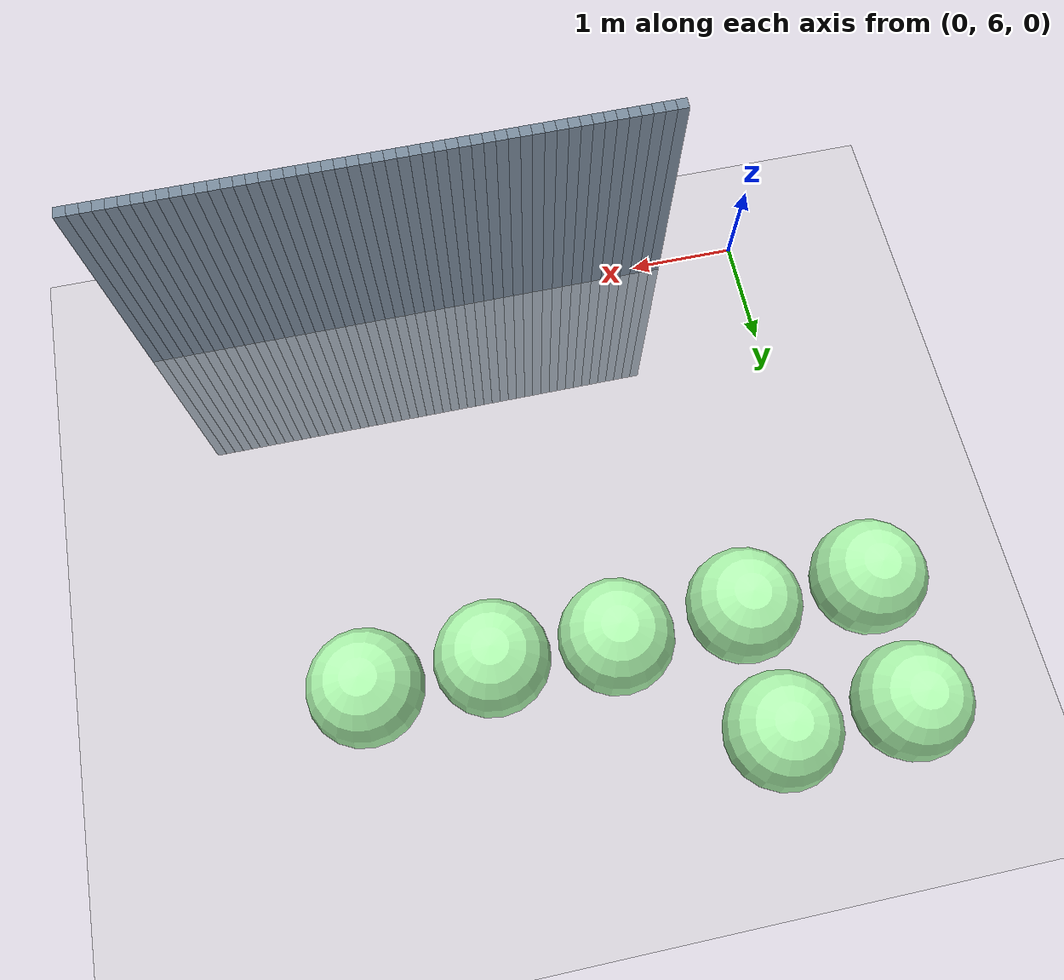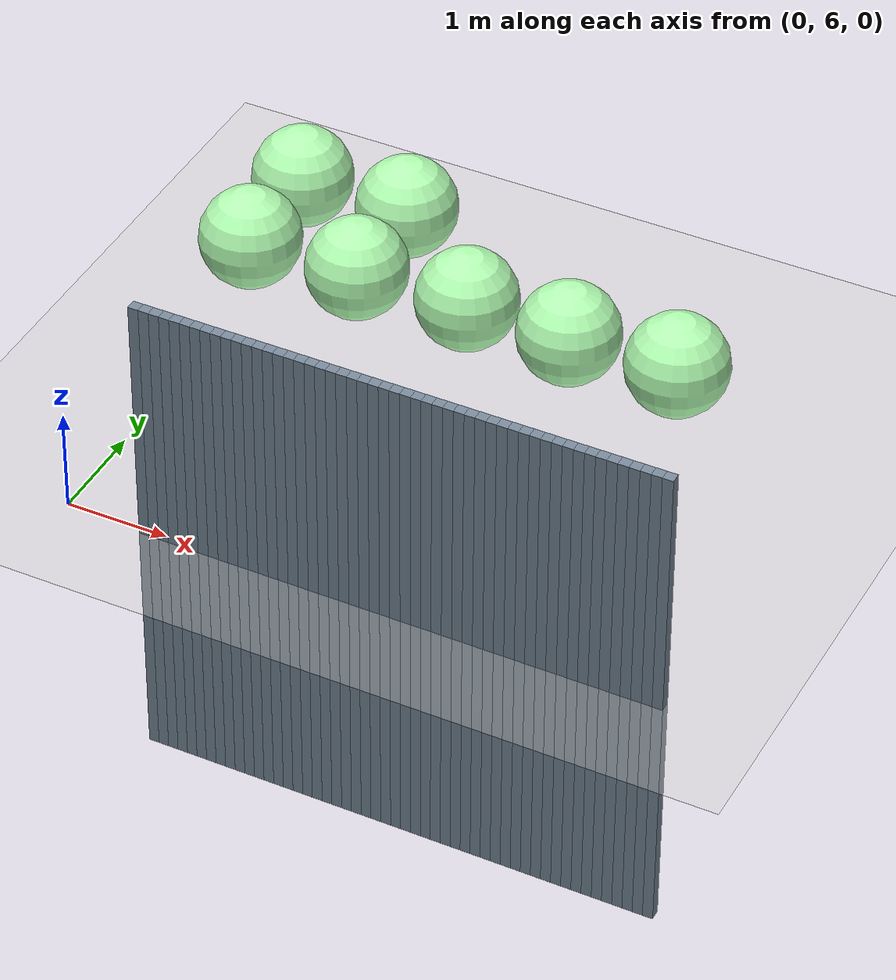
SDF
<sdf version="1.6">
 <world name="default">
  <model name="ground_plane">
   <static>1</static>
   <link name="link">
    <collision name="collision">
     <geometry><plane><normal>0 0 1</normal><size>100 100</size></plane></geometry>
     <surface><friction><ode><mu>100</mu><mu2>50</mu2></ode></friction></surface>
    </collision>
    <visual name="visual">
     <cast_shadows>0</cast_shadows>
     <geometry><plane><normal>0 0 1</normal><size>100 100</size></plane></geometry>
     <material>
      <script><uri>file://media/materials/scripts/gazebo.material</uri><name>Gazebo/Grey</name></script>
     </material>
    </visual>
   </link>
  </model>
  <model name="unit_cylinder_76">
   <static>1</static>
   <pose>0.8 6 0 0 -0 0</pose>
   <link name="link">
    <inertial>
     <mass>1</mass>
     <inertia><ixx>0.145833</ixx><ixy>0</ixy><ixz>0</ixz><iyy>0.145833</iyy><iyz>0</iyz><izz>0.125</izz></inertia>
    </inertial>
    <collision name="collision"><geometry><box><size>0.1 0.1 5</size></box></geometry></collision>
    <visual name="visual">
     <geometry><box><size>0.1 0.1 5</size></box></geometry>
     <material><ambient>0.466667 0.533333 0.6 1</ambient><diffuse>0.466667 0.533333 0.6 1</diffuse></material>
     <material>
      <script><name>Gazebo/Grey</name><uri>file://media/materials/scripts/gazebo.material</uri></script>
     </material>
    </visual>
   </link>
  </model>
  <model name="unit_cylinder_78">
   <static>1</static>
   <pose>0.9 6 0 0 -0 0</pose>
   <link name="link">
    <inertial>
     <mass>1</mass>
     <inertia><ixx>0.145833</ixx><ixy>0</ixy><ixz>0</ixz><iyy>0.145833</iyy><iyz>0</iyz><izz>0.125</izz></inertia>
    </inertial>
    <collision name="collision"><geometry><box><size>0.1 0.1 5</size></box></geometry></collision>
    <visual name="visual">
     <geometry><box><size>0.1 0.1 5</size></box></geometry>
     <material><ambient>0.466667 0.533333 0.6 1</ambient><diffuse>0.466667 0.533333 0.6 1</diffuse></material>
     <material>
      <script><name>Gazebo/Grey</name><uri>file://media/materials/scripts/gazebo.material</uri></script>
     </material>
    </visual>
   </link>
  </model>
  <model name="unit_cylinder_80">
   <static>1</static>
   <pose>1 6 0 0 -0 0</pose>
   <link name="link">
    <inertial>
     <mass>1</mass>
     <inertia><ixx>0.145833</ixx><ixy>0</ixy><ixz>0</ixz><iyy>0.145833</iyy><iyz>0</iyz><izz>0.125</izz></inertia>
    </inertial>
    <collision name="collision"><geometry><box><size>0.1 0.1 5</size></box></geometry></collision>
    <visual name="visual">
     <geometry><box><size>0.1 0.1 5</size></box></geometry>
     <material><ambient>0.466667 0.533333 0.6 1</ambient><diffuse>0.466667 0.533333 0.6 1</diffuse></material>
     <material>
      <script><name>Gazebo/Grey</name><uri>file://media/materials/scripts/gazebo.material</uri></script>
     </material>
    </visual>
   </link>
  </model>
  <model name="unit_cylinder_82">
   <static>1</static>
   <pose>1.1 6 0 0 -0 0</pose>
   <link name="link">
    <inertial>
     <mass>1</mass>
     <inertia><ixx>0.145833</ixx><ixy>0</ixy><ixz>0</ixz><iyy>0.145833</iyy><iyz>0</iyz><izz>0.125</izz></inertia>
    </inertial>
    <collision name="collision"><geometry><box><size>0.1 0.1 5</size></box></geometry></collision>
    <visual name="visual">
     <geometry><box><size>0.1 0.1 5</size></box></geometry>
     <material><ambient>0.466667 0.533333 0.6 1</ambient><diffuse>0.466667 0.533333 0.6 1</diffuse></material>
     <material>
      <script><name>Gazebo/Grey</name><uri>file://media/materials/scripts/gazebo.material</uri></script>
     </material>
    </visual>
   </link>
  </model>
  <model name="unit_cylinder_84">
   <static>1</static>
   <pose>1.2 6 0 0 -0 0</pose>
   <link name="link">
    <inertial>
     <mass>1</mass>
     <inertia><ixx>0.145833</ixx><ixy>0</ixy><ixz>0</ixz><iyy>0.145833</iyy><iyz>0</iyz><izz>0.125</izz></inertia>
    </inertial>
    <collision name="collision"><geometry><box><size>0.1 0.1 5</size></box></geometry></collision>
    <visual name="visual">
     <geometry><box><size>0.1 0.1 5</size></box></geometry>
     <material><ambient>0.466667 0.533333 0.6 1</ambient><diffuse>0.466667 0.533333 0.6 1</diffuse></material>
     <material>
      <script><name>Gazebo/Grey</name><uri>file://media/materials/scripts/gazebo.material</uri></script>
     </material>
    </visual>
   </link>
  </model>
  <model name="unit_cylinder_86">
   <static>1</static>
   <pose>1.3 6 0 0 -0 0</pose>
   <link name="link">
    <inertial>
     <mass>1</mass>
     <inertia><ixx>0.145833</ixx><ixy>0</ixy><ixz>0</ixz><iyy>0.145833</iyy><iyz>0</iyz><izz>0.125</izz></inertia>
    </inertial>
    <collision name="collision"><geometry><box><size>0.1 0.1 5</size></box></geometry></collision>
    <visual name="visual">
     <geometry><box><size>0.1 0.1 5</size></box></geometry>
     <material><ambient>0.466667 0.533333 0.6 1</ambient><diffuse>0.466667 0.533333 0.6 1</diffuse></material>
     <material>
      <script><name>Gazebo/Grey</name><uri>file://media/materials/scripts/gazebo.material</uri></script>
     </material>
    </visual>
   </link>
  </model>
  <model name="unit_cylinder_88">
   <static>1</static>
   <pose>1.4 6 0 0 -0 0</pose>
   <link name="link">
    <inertial>
     <mass>1</mass>
     <inertia><ixx>0.145833</ixx><ixy>0</ixy><ixz>0</ixz><iyy>0.145833</iyy><iyz>0</iyz><izz>0.125</izz></inertia>
    </inertial>
    <collision name="collision"><geometry><box><size>0.1 0.1 5</size></box></geometry></collision>
    <visual name="visual">
     <geometry><box><size>0.1 0.1 5</size></box></geometry>
     <material><ambient>0.466667 0.533333 0.6 1</ambient><diffuse>0.466667 0.533333 0.6 1</diffuse></material>
     <material>
      <script><name>Gazebo/Grey</name><uri>file://media/materials/scripts/gazebo.material</uri></script>
     </material>
    </visual>
   </link>
  </model>
  <model name="unit_cylinder_90">
   <static>1</static>
   <pose>1.5 6 0 0 -0 0</pose>
   <link name="link">
    <inertial>
     <mass>1</mass>
     <inertia><ixx>0.145833</ixx><ixy>0</ixy><ixz>0</ixz><iyy>0.145833</iyy><iyz>0</iyz><izz>0.125</izz></inertia>
    </inertial>
    <collision name="collision"><geometry><box><size>0.1 0.1 5</size></box></geometry></collision>
    <visual name="visual">
     <geometry><box><size>0.1 0.1 5</size></box></geometry>
     <material><ambient>0.466667 0.533333 0.6 1</ambient><diffuse>0.466667 0.533333 0.6 1</diffuse></material>
     <material>
      <script><name>Gazebo/Grey</name><uri>file://media/materials/scripts/gazebo.material</uri></script>
     </material>
    </visual>
   </link>
  </model>
  <model name="unit_cylinder_92">
   <static>1</static>
   <pose>1.6 6 0 0 -0 0</pose>
   <link name="link">
    <inertial>
     <mass>1</mass>
     <inertia><ixx>0.145833</ixx><ixy>0</ixy><ixz>0</ixz><iyy>0.145833</iyy><iyz>0</iyz><izz>0.125</izz></inertia>
    </inertial>
    <collision name="collision"><geometry><box><size>0.1 0.1 5</size></box></geometry></collision>
    <visual name="visual">
     <geometry><box><size>0.1 0.1 5</size></box></geometry>
     <material><ambient>0.466667 0.533333 0.6 1</ambient><diffuse>0.466667 0.533333 0.6 1</diffuse></material>
     <material>
      <script><name>Gazebo/Grey</name><uri>file://media/materials/scripts/gazebo.material</uri></script>
     </material>
    </visual>
   </link>
  </model>
  <model name="unit_cylinder_94">
   <static>1</static>
   <pose>1.7 6 0 0 -0 0</pose>
   <link name="link">
    <inertial>
     <mass>1</mass>
     <inertia><ixx>0.145833</ixx><ixy>0</ixy><ixz>0</ixz><iyy>0.145833</iyy><iyz>0</iyz><izz>0.125</izz></inertia>
    </inertial>
    <collision name="collision"><geometry><box><size>0.1 0.1 5</size></box></geometry></collision>
    <visual name="visual">
     <geometry><box><size>0.1 0.1 5</size></box></geometry>
     <material><ambient>0.466667 0.533333 0.6 1</ambient><diffuse>0.466667 0.533333 0.6 1</diffuse></material>
     <material>
      <script><name>Gazebo/Grey</name><uri>file://media/materials/scripts/gazebo.material</uri></script>
     </material>
    </visual>
   </link>
  </model>
  <model name="unit_cylinder_96">
   <static>1</static>
   <pose>1.8 6 0 0 -0 0</pose>
   <link name="link">
    <inertial>
     <mass>1</mass>
     <inertia><ixx>0.145833</ixx><ixy>0</ixy><ixz>0</ixz><iyy>0.145833</iyy><iyz>0</iyz><izz>0.125</izz></inertia>
    </inertial>
    <collision name="collision"><geometry><box><size>0.1 0.1 5</size></box></geometry></collision>
    <visual name="visual">
     <geometry><box><size>0.1 0.1 5</size></box></geometry>
     <material><ambient>0.466667 0.533333 0.6 1</ambient><diffuse>0.466667 0.533333 0.6 1</diffuse></material>
     <material>
      <script><name>Gazebo/Grey</name><uri>file://media/materials/scripts/gazebo.material</uri></script>
     </material>
    </visual>
   </link>
  </model>
  <model name="unit_cylinder_98">
   <static>1</static>
   <pose>1.9 6 0 0 -0 0</pose>
   <link name="link">
    <inertial>
     <mass>1</mass>
     <inertia><ixx>0.145833</ixx><ixy>0</ixy><ixz>0</ixz><iyy>0.145833</iyy><iyz>0</iyz><izz>0.125</izz></inertia>
    </inertial>
    <collision name="collision"><geometry><box><size>0.1 0.1 5</size></box></geometry></collision>
    <visual name="visual">
     <geometry><box><size>0.1 0.1 5</size></box></geometry>
     <material><ambient>0.466667 0.533333 0.6 1</ambient><diffuse>0.466667 0.533333 0.6 1</diffuse></material>
     <material>
      <script><name>Gazebo/Grey</name><uri>file://media/materials/scripts/gazebo.material</uri></script>
     </material>
    </visual>
   </link>
  </model>
  <model name="unit_cylinder_100">
   <static>1</static>
   <pose>2 6 0 0 -0 0</pose>
   <link name="link">
    <inertial>
     <mass>1</mass>
     <inertia><ixx>0.145833</ixx><ixy>0</ixy><ixz>0</ixz><iyy>0.145833</iyy><iyz>0</iyz><izz>0.125</izz></inertia>
    </inertial>
    <collision name="collision"><geometry><box><size>0.1 0.1 5</size></box></geometry></collision>
    <visual name="visual">
     <geometry><box><size>0.1 0.1 5</size></box></geometry>
     <material><ambient>0.466667 0.533333 0.6 1</ambient><diffuse>0.466667 0.533333 0.6 1</diffuse></material>
     <material>
      <script><name>Gazebo/Grey</name><uri>file://media/materials/scripts/gazebo.material</uri></script>
     </material>
    </visual>
   </link>
  </model>
  <model name="unit_cylinder_102">
   <static>1</static>
   <pose>2.1 6 0 0 -0 0</pose>
   <link name="link">
    <inertial>
     <mass>1</mass>
     <inertia><ixx>0.145833</ixx><ixy>0</ixy><ixz>0</ixz><iyy>0.145833</iyy><iyz>0</iyz><izz>0.125</izz></inertia>
    </inertial>
    <collision name="collision"><geometry><box><size>0.1 0.1 5</size></box></geometry></collision>
    <visual name="visual">
     <geometry><box><size>0.1 0.1 5</size></box></geometry>
     <material><ambient>0.466667 0.533333 0.6 1</ambient><diffuse>0.466667 0.533333 0.6 1</diffuse></material>
     <material>
      <script><name>Gazebo/Grey</name><uri>file://media/materials/scripts/gazebo.material</uri></script>
     </material>
    </visual>
   </link>
  </model>
  <model name="unit_cylinder_104">
   <static>1</static>
   <pose>2.2 6 0 0 -0 0</pose>
   <link name="link">
    <inertial>
     <mass>1</mass>
     <inertia><ixx>0.145833</ixx><ixy>0</ixy><ixz>0</ixz><iyy>0.145833</iyy><iyz>0</iyz><izz>0.125</izz></inertia>
    </inertial>
    <collision name="collision"><geometry><box><size>0.1 0.1 5</size></box></geometry></collision>
    <visual name="visual">
     <geometry><box><size>0.1 0.1 5</size></box></geometry>
     <material><ambient>0.466667 0.533333 0.6 1</ambient><diffuse>0.466667 0.533333 0.6 1</diffuse></material>
     <material>
      <script><name>Gazebo/Grey</name><uri>file://media/materials/scripts/gazebo.material</uri></script>
     </material>
    </visual>
   </link>
  </model>
  <model name="unit_cylinder_106">
   <static>1</static>
   <pose>2.3 6 0 0 -0 0</pose>
   <link name="link">
    <inertial>
     <mass>1</mass>
     <inertia><ixx>0.145833</ixx><ixy>0</ixy><ixz>0</ixz><iyy>0.145833</iyy><iyz>0</iyz><izz>0.125</izz></inertia>
    </inertial>
    <collision name="collision"><geometry><box><size>0.1 0.1 5</size></box></geometry></collision>
    <visual name="visual">
     <geometry><box><size>0.1 0.1 5</size></box></geometry>
     <material><ambient>0.466667 0.533333 0.6 1</ambient><diffuse>0.466667 0.533333 0.6 1</diffuse></material>
     <material>
      <script><name>Gazebo/Grey</name><uri>file://media/materials/scripts/gazebo.material</uri></script>
     </material>
    </visual>
   </link>
  </model>
  <model name="unit_cylinder_108">
   <static>1</static>
   <pose>2.4 6 0 0 -0 0</pose>
   <link name="link">
    <inertial>
     <mass>1</mass>
     <inertia><ixx>0.145833</ixx><ixy>0</ixy><ixz>0</ixz><iyy>0.145833</iyy><iyz>0</iyz><izz>0.125</izz></inertia>
    </inertial>
    <collision name="collision"><geometry><box><size>0.1 0.1 5</size></box></geometry></collision>
    <visual name="visual">
     <geometry><box><size>0.1 0.1 5</size></box></geometry>
     <material><ambient>0.466667 0.533333 0.6 1</ambient><diffuse>0.466667 0.533333 0.6 1</diffuse></material>
     <material>
      <script><name>Gazebo/Grey</name><uri>file://media/materials/scripts/gazebo.material</uri></script>
     </material>
    </visual>
   </link>
  </model>
  <model name="unit_cylinder_110">
   <static>1</static>
   <pose>2.5 6 0 0 -0 0</pose>
   <link name="link">
    <inertial>
     <mass>1</mass>
     <inertia><ixx>0.145833</ixx><ixy>0</ixy><ixz>0</ixz><iyy>0.145833</iyy><iyz>0</iyz><izz>0.125</izz></inertia>
    </inertial>
    <collision name="collision"><geometry><box><size>0.1 0.1 5</size></box></geometry></collision>
    <visual name="visual">
     <geometry><box><size>0.1 0.1 5</size></box></geometry>
     <material><ambient>0.466667 0.533333 0.6 1</ambient><diffuse>0.466667 0.533333 0.6 1</diffuse></material>
     <material>
      <script><name>Gazebo/Grey</name><uri>file://media/materials/scripts/gazebo.material</uri></script>
     </material>
    </visual>
   </link>
  </model>
  <model name="unit_cylinder_112">
   <static>1</static>
   <pose>2.6 6 0 0 -0 0</pose>
   <link name="link">
    <inertial>
     <mass>1</mass>
     <inertia><ixx>0.145833</ixx><ixy>0</ixy><ixz>0</ixz><iyy>0.145833</iyy><iyz>0</iyz><izz>0.125</izz></inertia>
    </inertial>
    <collision name="collision"><geometry><box><size>0.1 0.1 5</size></box></geometry></collision>
    <visual name="visual">
     <geometry><box><size>0.1 0.1 5</size></box></geometry>
     <material><ambient>0.466667 0.533333 0.6 1</ambient><diffuse>0.466667 0.533333 0.6 1</diffuse></material>
     <material>
      <script><name>Gazebo/Grey</name><uri>file://media/materials/scripts/gazebo.material</uri></script>
     </material>
    </visual>
   </link>
  </model>
  <model name="unit_cylinder_114">
   <static>1</static>
   <pose>2.7 6 0 0 -0 0</pose>
   <link name="link">
    <inertial>
     <mass>1</mass>
     <inertia><ixx>0.145833</ixx><ixy>0</ixy><ixz>0</ixz><iyy>0.145833</iyy><iyz>0</iyz><izz>0.125</izz></inertia>
    </inertial>
    <collision name="collision"><geometry><box><size>0.1 0.1 5</size></box></geometry></collision>
    <visual name="visual">
     <geometry><box><size>0.1 0.1 5</size></box></geometry>
     <material><ambient>0.466667 0.533333 0.6 1</ambient><diffuse>0.466667 0.533333 0.6 1</diffuse></material>
     <material>
      <script><name>Gazebo/Grey</name><uri>file://media/materials/scripts/gazebo.material</uri></script>
     </material>
    </visual>
   </link>
  </model>
  <model name="unit_cylinder_116">
   <static>1</static>
   <pose>2.8 6 0 0 -0 0</pose>
   <link name="link">
    <inertial>
     <mass>1</mass>
     <inertia><ixx>0.145833</ixx><ixy>0</ixy><ixz>0</ixz><iyy>0.145833</iyy><iyz>0</iyz><izz>0.125</izz></inertia>
    </inertial>
    <collision name="collision"><geometry><box><size>0.1 0.1 5</size></box></geometry></collision>
    <visual name="visual">
     <geometry><box><size>0.1 0.1 5</size></box></geometry>
     <material><ambient>0.466667 0.533333 0.6 1</ambient><diffuse>0.466667 0.533333 0.6 1</diffuse></material>
     <material>
      <script><name>Gazebo/Grey</name><uri>file://media/materials/scripts/gazebo.material</uri></script>
     </material>
    </visual>
   </link>
  </model>
  <model name="unit_cylinder_118">
   <static>1</static>
   <pose>2.9 6 0 0 -0 0</pose>
   <link name="link">
    <inertial>
     <mass>1</mass>
     <inertia><ixx>0.145833</ixx><ixy>0</ixy><ixz>0</ixz><iyy>0.145833</iyy><iyz>0</iyz><izz>0.125</izz></inertia>
    </inertial>
    <collision name="collision"><geometry><box><size>0.1 0.1 5</size></box></geometry></collision>
    <visual name="visual">
     <geometry><box><size>0.1 0.1 5</size></box></geometry>
     <material><ambient>0.466667 0.533333 0.6 1</ambient><diffuse>0.466667 0.533333 0.6 1</diffuse></material>
     <material>
      <script><name>Gazebo/Grey</name><uri>file://media/materials/scripts/gazebo.material</uri></script>
     </material>
    </visual>
   </link>
  </model>
  <model name="unit_cylinder_120">
   <static>1</static>
   <pose>3 6 0 0 -0 0</pose>
   <link name="link">
    <inertial>
     <mass>1</mass>
     <inertia><ixx>0.145833</ixx><ixy>0</ixy><ixz>0</ixz><iyy>0.145833</iyy><iyz>0</iyz><izz>0.125</izz></inertia>
    </inertial>
    <collision name="collision"><geometry><box><size>0.1 0.1 5</size></box></geometry></collision>
    <visual name="visual">
     <geometry><box><size>0.1 0.1 5</size></box></geometry>
     <material><ambient>0.466667 0.533333 0.6 1</ambient><diffuse>0.466667 0.533333 0.6 1</diffuse></material>
     <material>
      <script><name>Gazebo/Grey</name><uri>file://media/materials/scripts/gazebo.material</uri></script>
     </material>
    </visual>
   </link>
  </model>
  <model name="unit_cylinder_122">
   <static>1</static>
   <pose>3.1 6 0 0 -0 0</pose>
   <link name="link">
    <inertial>
     <mass>1</mass>
     <inertia><ixx>0.145833</ixx><ixy>0</ixy><ixz>0</ixz><iyy>0.145833</iyy><iyz>0</iyz><izz>0.125</izz></inertia>
    </inertial>
    <collision name="collision"><geometry><box><size>0.1 0.1 5</size></box></geometry></collision>
    <visual name="visual">
     <geometry><box><size>0.1 0.1 5</size></box></geometry>
     <material><ambient>0.466667 0.533333 0.6 1</ambient><diffuse>0.466667 0.533333 0.6 1</diffuse></material>
     <material>
      <script><name>Gazebo/Grey</name><uri>file://media/materials/scripts/gazebo.material</uri></script>
     </material>
    </visual>
   </link>
  </model>
  <model name="unit_cylinder_124">
   <static>1</static>
   <pose>3.2 6 0 0 -0 0</pose>
   <link name="link">
    <inertial>
     <mass>1</mass>
     <inertia><ixx>0.145833</ixx><ixy>0</ixy><ixz>0</ixz><iyy>0.145833</iyy><iyz>0</iyz><izz>0.125</izz></inertia>
    </inertial>
    <collision name="collision"><geometry><box><size>0.1 0.1 5</size></box></geometry></collision>
    <visual name="visual">
     <geometry><box><size>0.1 0.1 5</size></box></geometry>
     <material><ambient>0.466667 0.533333 0.6 1</ambient><diffuse>0.466667 0.533333 0.6 1</diffuse></material>
     <material>
      <script><name>Gazebo/Grey</name><uri>file://media/materials/scripts/gazebo.material</uri></script>
     </material>
    </visual>
   </link>
  </model>
  <model name="unit_cylinder_126">
   <static>1</static>
   <pose>3.3 6 0 0 -0 0</pose>
   <link name="link">
    <inertial>
     <mass>1</mass>
     <inertia><ixx>0.145833</ixx><ixy>0</ixy><ixz>0</ixz><iyy>0.145833</iyy><iyz>0</iyz><izz>0.125</izz></inertia>
    </inertial>
    <collision name="collision"><geometry><box><size>0.1 0.1 5</size></box></geometry></collision>
    <visual name="visual">
     <geometry><box><size>0.1 0.1 5</size></box></geometry>
     <material><ambient>0.466667 0.533333 0.6 1</ambient><diffuse>0.466667 0.533333 0.6 1</diffuse></material>
     <material>
      <script><name>Gazebo/Grey</name><uri>file://media/materials/scripts/gazebo.material</uri></script>
     </material>
    </visual>
   </link>
  </model>
  <model name="unit_cylinder_128">
   <static>1</static>
   <pose>3.4 6 0 0 -0 0</pose>
   <link name="link">
    <inertial>
     <mass>1</mass>
     <inertia><ixx>0.145833</ixx><ixy>0</ixy><ixz>0</ixz><iyy>0.145833</iyy><iyz>0</iyz><izz>0.125</izz></inertia>
    </inertial>
    <collision name="collision"><geometry><box><size>0.1 0.1 5</size></box></geometry></collision>
    <visual name="visual">
     <geometry><box><size>0.1 0.1 5</size></box></geometry>
     <material><ambient>0.466667 0.533333 0.6 1</ambient><diffuse>0.466667 0.533333 0.6 1</diffuse></material>
     <material>
      <script><name>Gazebo/Grey</name><uri>file://media/materials/scripts/gazebo.material</uri></script>
     </material>
    </visual>
   </link>
  </model>
  <model name="unit_cylinder_130">
   <static>1</static>
   <pose>3.5 6 0 0 -0 0</pose>
   <link name="link">
    <inertial>
     <mass>1</mass>
     <inertia><ixx>0.145833</ixx><ixy>0</ixy><ixz>0</ixz><iyy>0.145833</iyy><iyz>0</iyz><izz>0.125</izz></inertia>
    </inertial>
    <collision name="collision"><geometry><box><size>0.1 0.1 5</size></box></geometry></collision>
    <visual name="visual">
     <geometry><box><size>0.1 0.1 5</size></box></geometry>
     <material><ambient>0.466667 0.533333 0.6 1</ambient><diffuse>0.466667 0.533333 0.6 1</diffuse></material>
     <material>
      <script><name>Gazebo/Grey</name><uri>file://media/materials/scripts/gazebo.material</uri></script>
     </material>
    </visual>
   </link>
  </model>
  <model name="unit_cylinder_132">
   <static>1</static>
   <pose>3.6 6 0 0 -0 0</pose>
   <link name="link">
    <inertial>
     <mass>1</mass>
     <inertia><ixx>0.145833</ixx><ixy>0</ixy><ixz>0</ixz><iyy>0.145833</iyy><iyz>0</iyz><izz>0.125</izz></inertia>
    </inertial>
    <collision name="collision"><geometry><box><size>0.1 0.1 5</size></box></geometry></collision>
    <visual name="visual">
     <geometry><box><size>0.1 0.1 5</size></box></geometry>
     <material><ambient>0.466667 0.533333 0.6 1</ambient><diffuse>0.466667 0.533333 0.6 1</diffuse></material>
     <material>
      <script><name>Gazebo/Grey</name><uri>file://media/materials/scripts/gazebo.material</uri></script>
     </material>
    </visual>
   </link>
  </model>
  <model name="unit_cylinder_134">
   <static>1</static>
   <pose>3.7 6 0 0 -0 0</pose>
   <link name="link">
    <inertial>
     <mass>1</mass>
     <inertia><ixx>0.145833</ixx><ixy>0</ixy><ixz>0</ixz><iyy>0.145833</iyy><iyz>0</iyz><izz>0.125</izz></inertia>
    </inertial>
    <collision name="collision"><geometry><box><size>0.1 0.1 5</size></box></geometry></collision>
    <visual name="visual">
     <geometry><box><size>0.1 0.1 5</size></box></geometry>
     <material><ambient>0.466667 0.533333 0.6 1</ambient><diffuse>0.466667 0.533333 0.6 1</diffuse></material>
     <material>
      <script><name>Gazebo/Grey</name><uri>file://media/materials/scripts/gazebo.material</uri></script>
     </material>
    </visual>
   </link>
  </model>
  <model name="unit_cylinder_136">
   <static>1</static>
   <pose>3.8 6 0 0 -0 0</pose>
   <link name="link">
    <inertial>
     <mass>1</mass>
     <inertia><ixx>0.145833</ixx><ixy>0</ixy><ixz>0</ixz><iyy>0.145833</iyy><iyz>0</iyz><izz>0.125</izz></inertia>
    </inertial>
    <collision name="collision"><geometry><box><size>0.1 0.1 5</size></box></geometry></collision>
    <visual name="visual">
     <geometry><box><size>0.1 0.1 5</size></box></geometry>
     <material><ambient>0.466667 0.533333 0.6 1</ambient><diffuse>0.466667 0.533333 0.6 1</diffuse></material>
     <material>
      <script><name>Gazebo/Grey</name><uri>file://media/materials/scripts/gazebo.material</uri></script>
     </material>
    </visual>
   </link>
  </model>
  <model name="unit_cylinder_138">
   <static>1</static>
   <pose>3.9 6 0 0 -0 0</pose>
   <link name="link">
    <inertial>
     <mass>1</mass>
     <inertia><ixx>0.145833</ixx><ixy>0</ixy><ixz>0</ixz><iyy>0.145833</iyy><iyz>0</iyz><izz>0.125</izz></inertia>
    </inertial>
    <collision name="collision"><geometry><box><size>0.1 0.1 5</size></box></geometry></collision>
    <visual name="visual">
     <geometry><box><size>0.1 0.1 5</size></box></geometry>
     <material><ambient>0.466667 0.533333 0.6 1</ambient><diffuse>0.466667 0.533333 0.6 1</diffuse></material>
     <material>
      <script><name>Gazebo/Grey</name><uri>file://media/materials/scripts/gazebo.material</uri></script>
     </material>
    </visual>
   </link>
  </model>
  <model name="unit_cylinder_140">
   <static>1</static>
   <pose>4 6 0 0 -0 0</pose>
   <link name="link">
    <inertial>
     <mass>1</mass>
     <inertia><ixx>0.145833</ixx><ixy>0</ixy><ixz>0</ixz><iyy>0.145833</iyy><iyz>0</iyz><izz>0.125</izz></inertia>
    </inertial>
    <collision name="collision"><geometry><box><size>0.1 0.1 5</size></box></geometry></collision>
    <visual name="visual">
     <geometry><box><size>0.1 0.1 5</size></box></geometry>
     <material><ambient>0.466667 0.533333 0.6 1</ambient><diffuse>0.466667 0.533333 0.6 1</diffuse></material>
     <material>
      <script><name>Gazebo/Grey</name><uri>file://media/materials/scripts/gazebo.material</uri></script>
     </material>
    </visual>
   </link>
  </model>
  <model name="unit_cylinder_142">
   <static>1</static>
   <pose>4.1 6 0 0 -0 0</pose>
   <link name="link">
    <inertial>
     <mass>1</mass>
     <inertia><ixx>0.145833</ixx><ixy>0</ixy><ixz>0</ixz><iyy>0.145833</iyy><iyz>0</iyz><izz>0.125</izz></inertia>
    </inertial>
    <collision name="collision"><geometry><box><size>0.1 0.1 5</size></box></geometry></collision>
    <visual name="visual">
     <geometry><box><size>0.1 0.1 5</size></box></geometry>
     <material><ambient>0.466667 0.533333 0.6 1</ambient><diffuse>0.466667 0.533333 0.6 1</diffuse></material>
     <material>
      <script><name>Gazebo/Grey</name><uri>file://media/materials/scripts/gazebo.material</uri></script>
     </material>
    </visual>
   </link>
  </model>
  <model name="unit_cylinder_144">
   <static>1</static>
   <pose>4.2 6 0 0 -0 0</pose>
   <link name="link">
    <inertial>
     <mass>1</mass>
     <inertia><ixx>0.145833</ixx><ixy>0</ixy><ixz>0</ixz><iyy>0.145833</iyy><iyz>0</iyz><izz>0.125</izz></inertia>
    </inertial>
    <collision name="collision"><geometry><box><size>0.1 0.1 5</size></box></geometry></collision>
    <visual name="visual">
     <geometry><box><size>0.1 0.1 5</size></box></geometry>
     <material><ambient>0.466667 0.533333 0.6 1</ambient><diffuse>0.466667 0.533333 0.6 1</diffuse></material>
     <material>
      <script><name>Gazebo/Grey</name><uri>file://media/materials/scripts/gazebo.material</uri></script>
     </material>
    </visual>
   </link>
  </model>
  <model name="unit_cylinder_146">
   <static>1</static>
   <pose>4.3 6 0 0 -0 0</pose>
   <link name="link">
    <inertial>
     <mass>1</mass>
     <inertia><ixx>0.145833</ixx><ixy>0</ixy><ixz>0</ixz><iyy>0.145833</iyy><iyz>0</iyz><izz>0.125</izz></inertia>
    </inertial>
    <collision name="collision"><geometry><box><size>0.1 0.1 5</size></box></geometry></collision>
    <visual name="visual">
     <geometry><box><size>0.1 0.1 5</size></box></geometry>
     <material><ambient>0.466667 0.533333 0.6 1</ambient><diffuse>0.466667 0.533333 0.6 1</diffuse></material>
     <material>
      <script><name>Gazebo/Grey</name><uri>file://media/materials/scripts/gazebo.material</uri></script>
     </material>
    </visual>
   </link>
  </model>
  <model name="unit_cylinder_148">
   <static>1</static>
   <pose>4.4 6 0 0 -0 0</pose>
   <link name="link">
    <inertial>
     <mass>1</mass>
     <inertia><ixx>0.145833</ixx><ixy>0</ixy><ixz>0</ixz><iyy>0.145833</iyy><iyz>0</iyz><izz>0.125</izz></inertia>
    </inertial>
    <collision name="collision"><geometry><box><size>0.1 0.1 5</size></box></geometry></collision>
    <visual name="visual">
     <geometry><box><size>0.1 0.1 5</size></box></geometry>
     <material><ambient>0.466667 0.533333 0.6 1</ambient><diffuse>0.466667 0.533333 0.6 1</diffuse></material>
     <material>
      <script><name>Gazebo/Grey</name><uri>file://media/materials/scripts/gazebo.material</uri></script>
     </material>
    </visual>
   </link>
  </model>
  <model name="unit_cylinder_150">
   <static>1</static>
   <pose>4.5 6 0 0 -0 0</pose>
   <link name="link">
    <inertial>
     <mass>1</mass>
     <inertia><ixx>0.145833</ixx><ixy>0</ixy><ixz>0</ixz><iyy>0.145833</iyy><iyz>0</iyz><izz>0.125</izz></inertia>
    </inertial>
    <collision name="collision"><geometry><box><size>0.1 0.1 5</size></box></geometry></collision>
    <visual name="visual">
     <geometry><box><size>0.1 0.1 5</size></box></geometry>
     <material><ambient>0.466667 0.533333 0.6 1</ambient><diffuse>0.466667 0.533333 0.6 1</diffuse></material>
     <material>
      <script><name>Gazebo/Grey</name><uri>file://media/materials/scripts/gazebo.material</uri></script>
     </material>
    </visual>
   </link>
  </model>
  <model name="unit_cylinder_152">
   <static>1</static>
   <pose>4.6 6 0 0 -0 0</pose>
   <link name="link">
    <inertial>
     <mass>1</mass>
     <inertia><ixx>0.145833</ixx><ixy>0</ixy><ixz>0</ixz><iyy>0.145833</iyy><iyz>0</iyz><izz>0.125</izz></inertia>
    </inertial>
    <collision name="collision"><geometry><box><size>0.1 0.1 5</size></box></geometry></collision>
    <visual name="visual">
     <geometry><box><size>0.1 0.1 5</size></box></geometry>
     <material><ambient>0.466667 0.533333 0.6 1</ambient><diffuse>0.466667 0.533333 0.6 1</diffuse></material>
     <material>
      <script><name>Gazebo/Grey</name><uri>file://media/materials/scripts/gazebo.material</uri></script>
     </material>
    </visual>
   </link>
  </model>
  <model name="unit_cylinder_154">
   <static>1</static>
   <pose>4.7 6 0 0 -0 0</pose>
   <link name="link">
    <inertial>
     <mass>1</mass>
     <inertia><ixx>0.145833</ixx><ixy>0</ixy><ixz>0</ixz><iyy>0.145833</iyy><iyz>0</iyz><izz>0.125</izz></inertia>
    </inertial>
    <collision name="collision"><geometry><box><size>0.1 0.1 5</size></box></geometry></collision>
    <visual name="visual">
     <geometry><box><size>0.1 0.1 5</size></box></geometry>
     <material><ambient>0.466667 0.533333 0.6 1</ambient><diffuse>0.466667 0.533333 0.6 1</diffuse></material>
     <material>
      <script><name>Gazebo/Grey</name><uri>file://media/materials/scripts/gazebo.material</uri></script>
     </material>
    </visual>
   </link>
  </model>
  <model name="unit_cylinder_156">
   <static>1</static>
   <pose>4.8 6 0 0 -0 0</pose>
   <link name="link">
    <inertial>
     <mass>1</mass>
     <inertia><ixx>0.145833</ixx><ixy>0</ixy><ixz>0</ixz><iyy>0.145833</iyy><iyz>0</iyz><izz>0.125</izz></inertia>
    </inertial>
    <collision name="collision"><geometry><box><size>0.1 0.1 5</size></box></geometry></collision>
    <visual name="visual">
     <geometry><box><size>0.1 0.1 5</size></box></geometry>
     <material><ambient>0.466667 0.533333 0.6 1</ambient><diffuse>0.466667 0.533333 0.6 1</diffuse></material>
     <material>
      <script><name>Gazebo/Grey</name><uri>file://media/materials/scripts/gazebo.material</uri></script>
     </material>
    </visual>
   </link>
  </model>
  <model name="unit_cylinder_158">
   <static>1</static>
   <pose>4.9 6 0 0 -0 0</pose>
   <link name="link">
    <inertial>
     <mass>1</mass>
     <inertia><ixx>0.145833</ixx><ixy>0</ixy><ixz>0</ixz><iyy>0.145833</iyy><iyz>0</iyz><izz>0.125</izz></inertia>
    </inertial>
    <collision name="collision"><geometry><box><size>0.1 0.1 5</size></box></geometry></collision>
    <visual name="visual">
     <geometry><box><size>0.1 0.1 5</size></box></geometry>
     <material><ambient>0.466667 0.533333 0.6 1</ambient><diffuse>0.466667 0.533333 0.6 1</diffuse></material>
     <material>
      <script><name>Gazebo/Grey</name><uri>file://media/materials/scripts/gazebo.material</uri></script>
     </material>
    </visual>
   </link>
  </model>
  <model name="unit_cylinder_160">
   <static>1</static>
   <pose>5 6 0 0 -0 0</pose>
   <link name="link">
    <inertial>
     <mass>1</mass>
     <inertia><ixx>0.145833</ixx><ixy>0</ixy><ixz>0</ixz><iyy>0.145833</iyy><iyz>0</iyz><izz>0.125</izz></inertia>
    </inertial>
    <collision name="collision"><geometry><box><size>0.1 0.1 5</size></box></geometry></collision>
    <visual name="visual">
     <geometry><box><size>0.1 0.1 5</size></box></geometry>
     <material><ambient>0.466667 0.533333 0.6 1</ambient><diffuse>0.466667 0.533333 0.6 1</diffuse></material>
     <material>
      <script><name>Gazebo/Grey</name><uri>file://media/materials/scripts/gazebo.material</uri></script>
     </material>
    </visual>
   </link>
  </model>
  <model name="unit_cylinder_162">
   <static>1</static>
   <pose>5.1 6 0 0 -0 0</pose>
   <link name="link">
    <inertial>
     <mass>1</mass>
     <inertia><ixx>0.145833</ixx><ixy>0</ixy><ixz>0</ixz><iyy>0.145833</iyy><iyz>0</iyz><izz>0.125</izz></inertia>
    </inertial>
    <collision name="collision"><geometry><box><size>0.1 0.1 5</size></box></geometry></collision>
    <visual name="visual">
     <geometry><box><size>0.1 0.1 5</size></box></geometry>
     <material><ambient>0.466667 0.533333 0.6 1</ambient><diffuse>0.466667 0.533333 0.6 1</diffuse></material>
     <material>
      <script><name>Gazebo/Grey</name><uri>file://media/materials/scripts/gazebo.material</uri></script>
     </material>
    </visual>
   </link>
  </model>
  <model name="unit_cylinder_164">
   <static>1</static>
   <pose>5.2 6 0 0 -0 0</pose>
   <link name="link">
    <inertial>
     <mass>1</mass>
     <inertia><ixx>0.145833</ixx><ixy>0</ixy><ixz>0</ixz><iyy>0.145833</iyy><iyz>0</iyz><izz>0.125</izz></inertia>
    </inertial>
    <collision name="collision"><geometry><box><size>0.1 0.1 5</size></box></geometry></collision>
    <visual name="visual">
     <geometry><box><size>0.1 0.1 5</size></box></geometry>
     <material><ambient>0.466667 0.533333 0.6 1</ambient><diffuse>0.466667 0.533333 0.6 1</diffuse></material>
     <material>
      <script><name>Gazebo/Grey</name><uri>file://media/materials/scripts/gazebo.material</uri></script>
     </material>
    </visual>
   </link>
  </model>
  <model name="unit_cylinder_166">
   <static>1</static>
   <pose>5.3 6 0 0 -0 0</pose>
   <link name="link">
    <inertial>
     <mass>1</mass>
     <inertia><ixx>0.145833</ixx><ixy>0</ixy><ixz>0</ixz><iyy>0.145833</iyy><iyz>0</iyz><izz>0.125</izz></inertia>
    </inertial>
    <collision name="collision"><geometry><box><size>0.1 0.1 5</size></box></geometry></collision>
    <visual name="visual">
     <geometry><box><size>0.1 0.1 5</size></box></geometry>
     <material><ambient>0.466667 0.533333 0.6 1</ambient><diffuse>0.466667 0.533333 0.6 1</diffuse></material>
     <material>
      <script><name>Gazebo/Grey</name><uri>file://media/materials/scripts/gazebo.material</uri></script>
     </material>
    </visual>
   </link>
  </model>
  <model name="unit_cylinder_168">
   <static>1</static>
   <pose>5.4 6 0 0 -0 0</pose>
   <link name="link">
    <inertial>
     <mass>1</mass>
     <inertia><ixx>0.145833</ixx><ixy>0</ixy><ixz>0</ixz><iyy>0.145833</iyy><iyz>0</iyz><izz>0.125</izz></inertia>
    </inertial>
    <collision name="collision"><geometry><box><size>0.1 0.1 5</size></box></geometry></collision>
    <visual name="visual">
     <geometry><box><size>0.1 0.1 5</size></box></geometry>
     <material><ambient>0.466667 0.533333 0.6 1</ambient><diffuse>0.466667 0.533333 0.6 1</diffuse></material>
     <material>
      <script><name>Gazebo/Grey</name><uri>file://media/materials/scripts/gazebo.material</uri></script>
     </material>
    </visual>
   </link>
  </model>
  <model name="unit_cylinder_170">
   <static>1</static>
   <pose>5.5 6 0 0 -0 0</pose>
   <link name="link">
    <inertial>
     <mass>1</mass>
     <inertia><ixx>0.145833</ixx><ixy>0</ixy><ixz>0</ixz><iyy>0.145833</iyy><iyz>0</iyz><izz>0.125</izz></inertia>
    </inertial>
    <collision name="collision"><geometry><box><size>0.1 0.1 5</size></box></geometry></collision>
    <visual name="visual">
     <geometry><box><size>0.1 0.1 5</size></box></geometry>
     <material><ambient>0.466667 0.533333 0.6 1</ambient><diffuse>0.466667 0.533333 0.6 1</diffuse></material>
     <material>
      <script><name>Gazebo/Grey</name><uri>file://media/materials/scripts/gazebo.material</uri></script>
     </material>
    </visual>
   </link>
  </model>
  <model name="unit_cylinder_172">
   <static>1</static>
   <pose>5.6 6 0 0 -0 0</pose>
   <link name="link">
    <inertial>
     <mass>1</mass>
     <inertia><ixx>0.145833</ixx><ixy>0</ixy><ixz>0</ixz><iyy>0.145833</iyy><iyz>0</iyz><izz>0.125</izz></inertia>
    </inertial>
    <collision name="collision"><geometry><box><size>0.1 0.1 5</size></box></geometry></collision>
    <visual name="visual">
     <geometry><box><size>0.1 0.1 5</size></box></geometry>
     <material><ambient>0.466667 0.533333 0.6 1</ambient><diffuse>0.466667 0.533333 0.6 1</diffuse></material>
     <material>
      <script><name>Gazebo/Grey</name><uri>file://media/materials/scripts/gazebo.material</uri></script>
     </material>
    </visual>
   </link>
  </model>
  <model name="unit_cylinder_174">
   <static>1</static>
   <pose>5.7 6 0 0 -0 0</pose>
   <link name="link">
    <inertial>
     <mass>1</mass>
     <inertia><ixx>0.145833</ixx><ixy>0</ixy><ixz>0</ixz><iyy>0.145833</iyy><iyz>0</iyz><izz>0.125</izz></inertia>
    </inertial>
    <collision name="collision"><geometry><box><size>0.1 0.1 5</size></box></geometry></collision>
    <visual name="visual">
     <geometry><box><size>0.1 0.1 5</size></box></geometry>
     <material><ambient>0.466667 0.533333 0.6 1</ambient><diffuse>0.466667 0.533333 0.6 1</diffuse></material>
     <material>
      <script><name>Gazebo/Grey</name><uri>file://media/materials/scripts/gazebo.material</uri></script>
     </material>
    </visual>
   </link>
  </model>
  <model name="unit_cylinder_176">
   <static>1</static>
   <pose>5.8 6 0 0 -0 0</pose>
   <link name="link">
    <inertial>
     <mass>1</mass>
     <inertia><ixx>0.145833</ixx><ixy>0</ixy><ixz>0</ixz><iyy>0.145833</iyy><iyz>0</iyz><izz>0.125</izz></inertia>
    </inertial>
    <collision name="collision"><geometry><box><size>0.1 0.1 5</size></box></geometry></collision>
    <visual name="visual">
     <geometry><box><size>0.1 0.1 5</size></box></geometry>
     <material><ambient>0.466667 0.533333 0.6 1</ambient><diffuse>0.466667 0.533333 0.6 1</diffuse></material>
     <material>
      <script><name>Gazebo/Grey</name><uri>file://media/materials/scripts/gazebo.material</uri></script>
     </material>
    </visual>
   </link>
  </model>
  <model name="bouncy_ball_clone_8">
   <link name="link_0">
    <inertial>
     <mass>0.1</mass>
     <inertia><ixx>1</ixx><ixy>0</ixy><ixz>0</ixz><iyy>1</iyy><iyz>0</iyz><izz>1</izz></inertia>
    </inertial>
    <visual name="visual">
     <geometry><sphere><radius>0.5</radius></sphere></geometry>
     <material>
      <lighting>1</lighting>
      <script><uri>file://media/materials/scripts/gazebo.material</uri><name>Gazebo/Grey</name></script>
      <shader type="pixel"><normal_map>__default__</normal_map></shader>
      <ambient>0 1 0 0</ambient>
      <diffuse>0.7 1 0.7 1</diffuse>
      <specular>0.01 0.01 0.01 1</specular>
      <emissive>0 0 0 1</emissive>
     </material>
    </visual>
    <collision name="collision">
     <geometry><sphere><radius>0.5</radius></sphere></geometry>
     <surface>
      <friction><ode><mu>0</mu><mu2>0</mu2></ode></friction>
      <contact>
       <ode><kp>500000</kp><kd>0</kd><max_vel>1e+26</max_vel><min_depth>0</min_depth></ode>
       <bullet>
        <kp>500000</kp>
        <kd>0</kd>
        <split_impulse>1</split_impulse>
        <split_impulse_penetration_threshold>-0.01</split_impulse_penetration_threshold>
       </bullet>
      </contact>
     </surface>
    </collision>
   </link>
   <static>0</static>
   <pose>-0.176858 10.7615 0.499998 0 -0 0</pose>
  </model>
  <model name="bouncy_ball_clone_9">
   <link name="link_0">
    <inertial>
     <mass>0.1</mass>
     <inertia><ixx>1</ixx><ixy>0</ixy><ixz>0</ixz><iyy>1</iyy><iyz>0</iyz><izz>1</izz></inertia>
    </inertial>
    <visual name="visual">
     <geometry><sphere><radius>0.5</radius></sphere></geometry>
     <material>
      <lighting>1</lighting>
      <script><uri>file://media/materials/scripts/gazebo.material</uri><name>Gazebo/Grey</name></script>
      <shader type="pixel"><normal_map>__default__</normal_map></shader>
      <ambient>0 1 0 0</ambient>
      <diffuse>0.7 1 0.7 1</diffuse>
      <specular>0.01 0.01 0.01 1</specular>
      <emissive>0 0 0 1</emissive>
     </material>
    </visual>
    <collision name="collision">
     <geometry><sphere><radius>0.5</radius></sphere></geometry>
     <surface>
      <friction><ode><mu>0</mu><mu2>0</mu2></ode></friction>
      <contact>
       <ode><kp>500000</kp><kd>0</kd><max_vel>1e+26</max_vel><min_depth>0</min_depth></ode>
       <bullet>
        <kp>500000</kp>
        <kd>0</kd>
        <split_impulse>1</split_impulse>
        <split_impulse_penetration_threshold>-0.01</split_impulse_penetration_threshold>
       </bullet>
      </contact>
     </surface>
    </collision>
   </link>
   <static>0</static>
   <pose>0.940601 10.7754 0.499998 0 -0 0</pose>
  </model>
  <model name="bouncy_ball_clone_13">
   <link name="link_0">
    <inertial>
     <mass>0.1</mass>
     <inertia><ixx>1</ixx><ixy>0</ixy><ixz>0</ixz><iyy>1</iyy><iyz>0</iyz><izz>1</izz></inertia>
    </inertial>
    <visual name="visual">
     <geometry><sphere><radius>0.5</radius></sphere></geometry>
     <material>
      <lighting>1</lighting>
      <script><uri>file://media/materials/scripts/gazebo.material</uri><name>Gazebo/Grey</name></script>
      <shader type="pixel"><normal_map>__default__</normal_map></shader>
      <ambient>0 1 0 0</ambient>
      <diffuse>0.7 1 0.7 1</diffuse>
      <specular>0.01 0.01 0.01 1</specular>
      <emissive>0 0 0 1</emissive>
     </material>
    </visual>
    <collision name="collision">
     <geometry><sphere><radius>0.5</radius></sphere></geometry>
     <surface>
      <friction><ode><mu>0</mu><mu2>0</mu2></ode></friction>
      <contact>
       <ode><kp>500000</kp><kd>0</kd><max_vel>1e+26</max_vel><min_depth>0</min_depth></ode>
       <bullet>
        <kp>500000</kp>
        <kd>0</kd>
        <split_impulse>1</split_impulse>
        <split_impulse_penetration_threshold>-0.01</split_impulse_penetration_threshold>
       </bullet>
      </contact>
     </surface>
    </collision>
   </link>
   <static>0</static>
   <pose>-0.149496 9.66944 0.499998 0 -0 0</pose>
  </model>
  <model name="bouncy_ball_clone_14">
   <link name="link_0">
    <inertial>
     <mass>0.1</mass>
     <inertia><ixx>1</ixx><ixy>0</ixy><ixz>0</ixz><iyy>1</iyy><iyz>0</iyz><izz>1</izz></inertia>
    </inertial>
    <visual name="visual">
     <geometry><sphere><radius>0.5</radius></sphere></geometry>
     <material>
      <lighting>1</lighting>
      <script><uri>file://media/materials/scripts/gazebo.material</uri><name>Gazebo/Grey</name></script>
      <shader type="pixel"><normal_map>__default__</normal_map></shader>
      <ambient>0 1 0 0</ambient>
      <diffuse>0.7 1 0.7 1</diffuse>
      <specular>0.01 0.01 0.01 1</specular>
      <emissive>0 0 0 1</emissive>
     </material>
    </visual>
    <collision name="collision">
     <geometry><sphere><radius>0.5</radius></sphere></geometry>
     <surface>
      <friction><ode><mu>0</mu><mu2>0</mu2></ode></friction>
      <contact>
       <ode><kp>500000</kp><kd>0</kd><max_vel>1e+26</max_vel><min_depth>0</min_depth></ode>
       <bullet>
        <kp>500000</kp>
        <kd>0</kd>
        <split_impulse>1</split_impulse>
        <split_impulse_penetration_threshold>-0.01</split_impulse_penetration_threshold>
       </bullet>
      </contact>
     </surface>
    </collision>
   </link>
   <static>0</static>
   <pose>0.968051 9.69641 0.499998 0 -0 0</pose>
  </model>
  <model name="bouncy_ball_clone_15">
   <link name="link_0">
    <inertial>
     <mass>0.1</mass>
     <inertia><ixx>1</ixx><ixy>0</ixy><ixz>0</ixz><iyy>1</iyy><iyz>0</iyz><izz>1</izz></inertia>
    </inertial>
    <visual name="visual">
     <geometry><sphere><radius>0.5</radius></sphere></geometry>
     <material>
      <lighting>1</lighting>
      <script><uri>file://media/materials/scripts/gazebo.material</uri><name>Gazebo/Grey</name></script>
      <shader type="pixel"><normal_map>__default__</normal_map></shader>
      <ambient>0 1 0 0</ambient>
      <diffuse>0.7 1 0.7 1</diffuse>
      <specular>0.01 0.01 0.01 1</specular>
      <emissive>0 0 0 1</emissive>
     </material>
    </visual>
    <collision name="collision">
     <geometry><sphere><radius>0.5</radius></sphere></geometry>
     <surface>
      <friction><ode><mu>0</mu><mu2>0</mu2></ode></friction>
      <contact>
       <ode><kp>500000</kp><kd>0</kd><max_vel>1e+26</max_vel><min_depth>0</min_depth></ode>
       <bullet>
        <kp>500000</kp>
        <kd>0</kd>
        <split_impulse>1</split_impulse>
        <split_impulse_penetration_threshold>-0.01</split_impulse_penetration_threshold>
       </bullet>
      </contact>
     </surface>
    </collision>
   </link>
   <static>0</static>
   <pose>2.09849 9.73598 0.499998 0 -0 0</pose>
  </model>
  <model name="bouncy_ball_clone_16">
   <link name="link_0">
    <inertial>
     <mass>0.1</mass>
     <inertia><ixx>1</ixx><ixy>0</ixy><ixz>0</ixz><iyy>1</iyy><iyz>0</iyz><izz>1</izz></inertia>
    </inertial>
    <visual name="visual">
     <geometry><sphere><radius>0.5</radius></sphere></geometry>
     <material>
      <lighting>1</lighting>
      <script><uri>file://media/materials/scripts/gazebo.material</uri><name>Gazebo/Grey</name></script>
      <shader type="pixel"><normal_map>__default__</normal_map></shader>
      <ambient>0 1 0 0</ambient>
      <diffuse>0.7 1 0.7 1</diffuse>
      <specular>0.01 0.01 0.01 1</specular>
      <emissive>0 0 0 1</emissive>
     </material>
    </visual>
    <collision name="collision">
     <geometry><sphere><radius>0.5</radius></sphere></geometry>
     <surface>
      <friction><ode><mu>0</mu><mu2>0</mu2></ode></friction>
      <contact>
       <ode><kp>500000</kp><kd>0</kd><max_vel>1e+26</max_vel><min_depth>0</min_depth></ode>
       <bullet>
        <kp>500000</kp>
        <kd>0</kd>
        <split_impulse>1</split_impulse>
        <split_impulse_penetration_threshold>-0.01</split_impulse_penetration_threshold>
       </bullet>
      </contact>
     </surface>
    </collision>
   </link>
   <static>0</static>
   <pose>3.16393 9.69899 0.499998 0 -0 0</pose>
  </model>
  <model name="bouncy_ball_clone_17">
   <link name="link_0">
    <inertial>
     <mass>0.1</mass>
     <inertia><ixx>1</ixx><ixy>0</ixy><ixz>0</ixz><iyy>1</iyy><iyz>0</iyz><izz>1</izz></inertia>
    </inertial>
    <visual name="visual">
     <geometry><sphere><radius>0.5</radius></sphere></geometry>
     <material>
      <lighting>1</lighting>
      <script><uri>file://media/materials/scripts/gazebo.material</uri><name>Gazebo/Grey</name></script>
      <shader type="pixel"><normal_map>__default__</normal_map></shader>
      <ambient>0 1 0 0</ambient>
      <diffuse>0.7 1 0.7 1</diffuse>
      <specular>0.01 0.01 0.01 1</specular>
      <emissive>0 0 0 1</emissive>
     </material>
    </visual>
    <collision name="collision">
     <geometry><sphere><radius>0.5</radius></sphere></geometry>
     <surface>
      <friction><ode><mu>0</mu><mu2>0</mu2></ode></friction>
      <contact>
       <ode><kp>500000</kp><kd>0</kd><max_vel>1e+26</max_vel><min_depth>0</min_depth></ode>
       <bullet>
        <kp>500000</kp>
        <kd>0</kd>
        <split_impulse>1</split_impulse>
        <split_impulse_penetration_threshold>-0.01</split_impulse_penetration_threshold>
       </bullet>
      </contact>
     </surface>
    </collision>
   </link>
   <static>0</static>
   <pose>4.24295 9.72613 0.499998 0 -0 0</pose>
  </model>
 </world>
</sdf>
